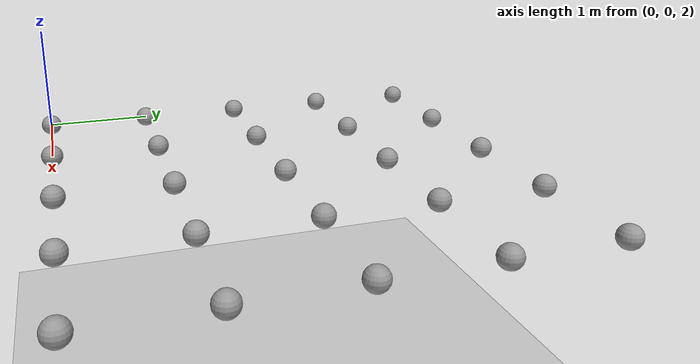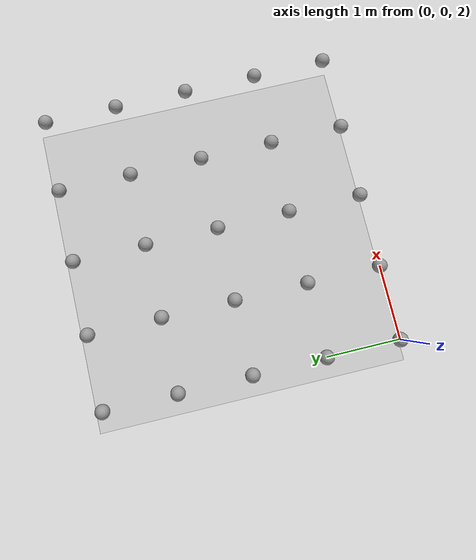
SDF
<sdf version="1.5">
 <world name="default">
  <model name="ground_plane">
   <static>true</static>
   <link name="link">
    <collision name="collision">
     <geometry><plane><normal>0 0 1</normal><size>100 100</size></plane></geometry>
     <surface>
      <bounce><restitution_coefficient>1.0</restitution_coefficient><threshold>0</threshold></bounce>
      <contact><ode><kd>1</kd><kp>1e8</kp><max_vel>1e5</max_vel><min_depth>0.001</min_depth></ode></contact>
      <friction><ode><mu>100</mu><mu2>50</mu2></ode></friction>
     </surface>
    </collision>
    <visual name="visual">
     <cast_shadows>false</cast_shadows>
     <geometry><plane><normal>0 0 1</normal><size>100 100</size></plane></geometry>
     <material>
      <script><uri>file://media/materials/scripts/gazebo.material</uri><name>Gazebo/Grey</name></script>
     </material>
    </visual>
   </link>
  </model>
  <include><uri>model://sun</uri></include>
  <model name="ball_2.0_0">
   <pose>0 0 2.0  0 0 0</pose>
   <link name="link">
    <inertial>
     <mass>11.309733552923257</mass>
     <inertia>
      <ixx>0.04523893421169304</ixx>
      <iyy>0.04523893421169304</iyy>
      <izz>0.04523893421169304</izz>
      <ixy>0.0</ixy>
      <ixz>0.0</ixz>
      <iyz>0.0</iyz>
     </inertia>
    </inertial>
    <collision name="collision">
     <geometry><sphere><radius>0.1</radius></sphere></geometry>
     <surface>
      <bounce><restitution_coefficient>1.0</restitution_coefficient><threshold>0</threshold></bounce>
      <contact><ode><kd>1</kd><kp>1e8</kp><max_vel>1e5</max_vel><min_depth>0.001</min_depth></ode></contact>
     </surface>
    </collision>
    <visual name="visual">
     <geometry><sphere><radius>0.1</radius></sphere></geometry>
     <material>
      <script><uri>file://media/materials/scripts/gazebo.material</uri><name>Gazebo/Grey</name></script>
     </material>
    </visual>
   </link>
  </model>
  <model name="ball_2.0_1">
   <pose>0 1 2.0  0 0 0</pose>
   <link name="link">
    <inertial>
     <mass>11.309733552923257</mass>
     <inertia>
      <ixx>0.04523893421169304</ixx>
      <iyy>0.04523893421169304</iyy>
      <izz>0.04523893421169304</izz>
      <ixy>0.0</ixy>
      <ixz>0.0</ixz>
      <iyz>0.0</iyz>
     </inertia>
    </inertial>
    <collision name="collision">
     <geometry><sphere><radius>0.1</radius></sphere></geometry>
     <surface>
      <bounce><restitution_coefficient>1.0</restitution_coefficient><threshold>0</threshold></bounce>
      <contact><ode><kd>1</kd><kp>1e8</kp><max_vel>1e5</max_vel><min_depth>0.001</min_depth></ode></contact>
     </surface>
    </collision>
    <visual name="visual">
     <geometry><sphere><radius>0.1</radius></sphere></geometry>
     <material>
      <script><uri>file://media/materials/scripts/gazebo.material</uri><name>Gazebo/Grey</name></script>
     </material>
    </visual>
   </link>
  </model>
  <model name="ball_2.0_2">
   <pose>0 2 2.0  0 0 0</pose>
   <link name="link">
    <inertial>
     <mass>11.309733552923257</mass>
     <inertia>
      <ixx>0.04523893421169304</ixx>
      <iyy>0.04523893421169304</iyy>
      <izz>0.04523893421169304</izz>
      <ixy>0.0</ixy>
      <ixz>0.0</ixz>
      <iyz>0.0</iyz>
     </inertia>
    </inertial>
    <collision name="collision">
     <geometry><sphere><radius>0.1</radius></sphere></geometry>
     <surface>
      <bounce><restitution_coefficient>1.0</restitution_coefficient><threshold>0</threshold></bounce>
      <contact><ode><kd>1</kd><kp>1e8</kp><max_vel>1e5</max_vel><min_depth>0.001</min_depth></ode></contact>
     </surface>
    </collision>
    <visual name="visual">
     <geometry><sphere><radius>0.1</radius></sphere></geometry>
     <material>
      <script><uri>file://media/materials/scripts/gazebo.material</uri><name>Gazebo/Grey</name></script>
     </material>
    </visual>
   </link>
  </model>
  <model name="ball_2.0_3">
   <pose>0 3 2.0  0 0 0</pose>
   <link name="link">
    <inertial>
     <mass>11.309733552923257</mass>
     <inertia>
      <ixx>0.04523893421169304</ixx>
      <iyy>0.04523893421169304</iyy>
      <izz>0.04523893421169304</izz>
      <ixy>0.0</ixy>
      <ixz>0.0</ixz>
      <iyz>0.0</iyz>
     </inertia>
    </inertial>
    <collision name="collision">
     <geometry><sphere><radius>0.1</radius></sphere></geometry>
     <surface>
      <bounce><restitution_coefficient>1.0</restitution_coefficient><threshold>0</threshold></bounce>
      <contact><ode><kd>1</kd><kp>1e8</kp><max_vel>1e5</max_vel><min_depth>0.001</min_depth></ode></contact>
     </surface>
    </collision>
    <visual name="visual">
     <geometry><sphere><radius>0.1</radius></sphere></geometry>
     <material>
      <script><uri>file://media/materials/scripts/gazebo.material</uri><name>Gazebo/Grey</name></script>
     </material>
    </visual>
   </link>
  </model>
  <model name="ball_2.0_4">
   <pose>0 4 2.0  0 0 0</pose>
   <link name="link">
    <inertial>
     <mass>11.309733552923257</mass>
     <inertia>
      <ixx>0.04523893421169304</ixx>
      <iyy>0.04523893421169304</iyy>
      <izz>0.04523893421169304</izz>
      <ixy>0.0</ixy>
      <ixz>0.0</ixz>
      <iyz>0.0</iyz>
     </inertia>
    </inertial>
    <collision name="collision">
     <geometry><sphere><radius>0.1</radius></sphere></geometry>
     <surface>
      <bounce><restitution_coefficient>1.0</restitution_coefficient><threshold>0</threshold></bounce>
      <contact><ode><kd>1</kd><kp>1e8</kp><max_vel>1e5</max_vel><min_depth>0.001</min_depth></ode></contact>
     </surface>
    </collision>
    <visual name="visual">
     <geometry><sphere><radius>0.1</radius></sphere></geometry>
     <material>
      <script><uri>file://media/materials/scripts/gazebo.material</uri><name>Gazebo/Grey</name></script>
     </material>
    </visual>
   </link>
  </model>
  <model name="ball_2.001_0">
   <pose>1 0 2.001  0 0 0</pose>
   <link name="link">
    <inertial>
     <mass>11.309733552923257</mass>
     <inertia>
      <ixx>0.04523893421169304</ixx>
      <iyy>0.04523893421169304</iyy>
      <izz>0.04523893421169304</izz>
      <ixy>0.0</ixy>
      <ixz>0.0</ixz>
      <iyz>0.0</iyz>
     </inertia>
    </inertial>
    <collision name="collision">
     <geometry><sphere><radius>0.1</radius></sphere></geometry>
     <surface>
      <bounce><restitution_coefficient>1.0</restitution_coefficient><threshold>0</threshold></bounce>
      <contact><ode><kd>1</kd><kp>1e8</kp><max_vel>1e5</max_vel><min_depth>0.001</min_depth></ode></contact>
     </surface>
    </collision>
    <visual name="visual">
     <geometry><sphere><radius>0.1</radius></sphere></geometry>
     <material>
      <script><uri>file://media/materials/scripts/gazebo.material</uri><name>Gazebo/Grey</name></script>
     </material>
    </visual>
   </link>
  </model>
  <model name="ball_2.001_1">
   <pose>1 1 2.001  0 0 0</pose>
   <link name="link">
    <inertial>
     <mass>11.309733552923257</mass>
     <inertia>
      <ixx>0.04523893421169304</ixx>
      <iyy>0.04523893421169304</iyy>
      <izz>0.04523893421169304</izz>
      <ixy>0.0</ixy>
      <ixz>0.0</ixz>
      <iyz>0.0</iyz>
     </inertia>
    </inertial>
    <collision name="collision">
     <geometry><sphere><radius>0.1</radius></sphere></geometry>
     <surface>
      <bounce><restitution_coefficient>1.0</restitution_coefficient><threshold>0</threshold></bounce>
      <contact><ode><kd>1</kd><kp>1e8</kp><max_vel>1e5</max_vel><min_depth>0.001</min_depth></ode></contact>
     </surface>
    </collision>
    <visual name="visual">
     <geometry><sphere><radius>0.1</radius></sphere></geometry>
     <material>
      <script><uri>file://media/materials/scripts/gazebo.material</uri><name>Gazebo/Grey</name></script>
     </material>
    </visual>
   </link>
  </model>
  <model name="ball_2.001_2">
   <pose>1 2 2.001  0 0 0</pose>
   <link name="link">
    <inertial>
     <mass>11.309733552923257</mass>
     <inertia>
      <ixx>0.04523893421169304</ixx>
      <iyy>0.04523893421169304</iyy>
      <izz>0.04523893421169304</izz>
      <ixy>0.0</ixy>
      <ixz>0.0</ixz>
      <iyz>0.0</iyz>
     </inertia>
    </inertial>
    <collision name="collision">
     <geometry><sphere><radius>0.1</radius></sphere></geometry>
     <surface>
      <bounce><restitution_coefficient>1.0</restitution_coefficient><threshold>0</threshold></bounce>
      <contact><ode><kd>1</kd><kp>1e8</kp><max_vel>1e5</max_vel><min_depth>0.001</min_depth></ode></contact>
     </surface>
    </collision>
    <visual name="visual">
     <geometry><sphere><radius>0.1</radius></sphere></geometry>
     <material>
      <script><uri>file://media/materials/scripts/gazebo.material</uri><name>Gazebo/Grey</name></script>
     </material>
    </visual>
   </link>
  </model>
  <model name="ball_2.001_3">
   <pose>1 3 2.001  0 0 0</pose>
   <link name="link">
    <inertial>
     <mass>11.309733552923257</mass>
     <inertia>
      <ixx>0.04523893421169304</ixx>
      <iyy>0.04523893421169304</iyy>
      <izz>0.04523893421169304</izz>
      <ixy>0.0</ixy>
      <ixz>0.0</ixz>
      <iyz>0.0</iyz>
     </inertia>
    </inertial>
    <collision name="collision">
     <geometry><sphere><radius>0.1</radius></sphere></geometry>
     <surface>
      <bounce><restitution_coefficient>1.0</restitution_coefficient><threshold>0</threshold></bounce>
      <contact><ode><kd>1</kd><kp>1e8</kp><max_vel>1e5</max_vel><min_depth>0.001</min_depth></ode></contact>
     </surface>
    </collision>
    <visual name="visual">
     <geometry><sphere><radius>0.1</radius></sphere></geometry>
     <material>
      <script><uri>file://media/materials/scripts/gazebo.material</uri><name>Gazebo/Grey</name></script>
     </material>
    </visual>
   </link>
  </model>
  <model name="ball_2.001_4">
   <pose>1 4 2.001  0 0 0</pose>
   <link name="link">
    <inertial>
     <mass>11.309733552923257</mass>
     <inertia>
      <ixx>0.04523893421169304</ixx>
      <iyy>0.04523893421169304</iyy>
      <izz>0.04523893421169304</izz>
      <ixy>0.0</ixy>
      <ixz>0.0</ixz>
      <iyz>0.0</iyz>
     </inertia>
    </inertial>
    <collision name="collision">
     <geometry><sphere><radius>0.1</radius></sphere></geometry>
     <surface>
      <bounce><restitution_coefficient>1.0</restitution_coefficient><threshold>0</threshold></bounce>
      <contact><ode><kd>1</kd><kp>1e8</kp><max_vel>1e5</max_vel><min_depth>0.001</min_depth></ode></contact>
     </surface>
    </collision>
    <visual name="visual">
     <geometry><sphere><radius>0.1</radius></sphere></geometry>
     <material>
      <script><uri>file://media/materials/scripts/gazebo.material</uri><name>Gazebo/Grey</name></script>
     </material>
    </visual>
   </link>
  </model>
  <model name="ball_2.002_0">
   <pose>2 0 2.002  0 0 0</pose>
   <link name="link">
    <inertial>
     <mass>11.309733552923257</mass>
     <inertia>
      <ixx>0.04523893421169304</ixx>
      <iyy>0.04523893421169304</iyy>
      <izz>0.04523893421169304</izz>
      <ixy>0.0</ixy>
      <ixz>0.0</ixz>
      <iyz>0.0</iyz>
     </inertia>
    </inertial>
    <collision name="collision">
     <geometry><sphere><radius>0.1</radius></sphere></geometry>
     <surface>
      <bounce><restitution_coefficient>1.0</restitution_coefficient><threshold>0</threshold></bounce>
      <contact><ode><kd>1</kd><kp>1e8</kp><max_vel>1e5</max_vel><min_depth>0.001</min_depth></ode></contact>
     </surface>
    </collision>
    <visual name="visual">
     <geometry><sphere><radius>0.1</radius></sphere></geometry>
     <material>
      <script><uri>file://media/materials/scripts/gazebo.material</uri><name>Gazebo/Grey</name></script>
     </material>
    </visual>
   </link>
  </model>
  <model name="ball_2.002_1">
   <pose>2 1 2.002  0 0 0</pose>
   <link name="link">
    <inertial>
     <mass>11.309733552923257</mass>
     <inertia>
      <ixx>0.04523893421169304</ixx>
      <iyy>0.04523893421169304</iyy>
      <izz>0.04523893421169304</izz>
      <ixy>0.0</ixy>
      <ixz>0.0</ixz>
      <iyz>0.0</iyz>
     </inertia>
    </inertial>
    <collision name="collision">
     <geometry><sphere><radius>0.1</radius></sphere></geometry>
     <surface>
      <bounce><restitution_coefficient>1.0</restitution_coefficient><threshold>0</threshold></bounce>
      <contact><ode><kd>1</kd><kp>1e8</kp><max_vel>1e5</max_vel><min_depth>0.001</min_depth></ode></contact>
     </surface>
    </collision>
    <visual name="visual">
     <geometry><sphere><radius>0.1</radius></sphere></geometry>
     <material>
      <script><uri>file://media/materials/scripts/gazebo.material</uri><name>Gazebo/Grey</name></script>
     </material>
    </visual>
   </link>
  </model>
  <model name="ball_2.002_2">
   <pose>2 2 2.002  0 0 0</pose>
   <link name="link">
    <inertial>
     <mass>11.309733552923257</mass>
     <inertia>
      <ixx>0.04523893421169304</ixx>
      <iyy>0.04523893421169304</iyy>
      <izz>0.04523893421169304</izz>
      <ixy>0.0</ixy>
      <ixz>0.0</ixz>
      <iyz>0.0</iyz>
     </inertia>
    </inertial>
    <collision name="collision">
     <geometry><sphere><radius>0.1</radius></sphere></geometry>
     <surface>
      <bounce><restitution_coefficient>1.0</restitution_coefficient><threshold>0</threshold></bounce>
      <contact><ode><kd>1</kd><kp>1e8</kp><max_vel>1e5</max_vel><min_depth>0.001</min_depth></ode></contact>
     </surface>
    </collision>
    <visual name="visual">
     <geometry><sphere><radius>0.1</radius></sphere></geometry>
     <material>
      <script><uri>file://media/materials/scripts/gazebo.material</uri><name>Gazebo/Grey</name></script>
     </material>
    </visual>
   </link>
  </model>
  <model name="ball_2.002_3">
   <pose>2 3 2.002  0 0 0</pose>
   <link name="link">
    <inertial>
     <mass>11.309733552923257</mass>
     <inertia>
      <ixx>0.04523893421169304</ixx>
      <iyy>0.04523893421169304</iyy>
      <izz>0.04523893421169304</izz>
      <ixy>0.0</ixy>
      <ixz>0.0</ixz>
      <iyz>0.0</iyz>
     </inertia>
    </inertial>
    <collision name="collision">
     <geometry><sphere><radius>0.1</radius></sphere></geometry>
     <surface>
      <bounce><restitution_coefficient>1.0</restitution_coefficient><threshold>0</threshold></bounce>
      <contact><ode><kd>1</kd><kp>1e8</kp><max_vel>1e5</max_vel><min_depth>0.001</min_depth></ode></contact>
     </surface>
    </collision>
    <visual name="visual">
     <geometry><sphere><radius>0.1</radius></sphere></geometry>
     <material>
      <script><uri>file://media/materials/scripts/gazebo.material</uri><name>Gazebo/Grey</name></script>
     </material>
    </visual>
   </link>
  </model>
  <model name="ball_2.002_4">
   <pose>2 4 2.002  0 0 0</pose>
   <link name="link">
    <inertial>
     <mass>11.309733552923257</mass>
     <inertia>
      <ixx>0.04523893421169304</ixx>
      <iyy>0.04523893421169304</iyy>
      <izz>0.04523893421169304</izz>
      <ixy>0.0</ixy>
      <ixz>0.0</ixz>
      <iyz>0.0</iyz>
     </inertia>
    </inertial>
    <collision name="collision">
     <geometry><sphere><radius>0.1</radius></sphere></geometry>
     <surface>
      <bounce><restitution_coefficient>1.0</restitution_coefficient><threshold>0</threshold></bounce>
      <contact><ode><kd>1</kd><kp>1e8</kp><max_vel>1e5</max_vel><min_depth>0.001</min_depth></ode></contact>
     </surface>
    </collision>
    <visual name="visual">
     <geometry><sphere><radius>0.1</radius></sphere></geometry>
     <material>
      <script><uri>file://media/materials/scripts/gazebo.material</uri><name>Gazebo/Grey</name></script>
     </material>
    </visual>
   </link>
  </model>
  <model name="ball_2.003_0">
   <pose>3 0 2.003  0 0 0</pose>
   <link name="link">
    <inertial>
     <mass>11.309733552923257</mass>
     <inertia>
      <ixx>0.04523893421169304</ixx>
      <iyy>0.04523893421169304</iyy>
      <izz>0.04523893421169304</izz>
      <ixy>0.0</ixy>
      <ixz>0.0</ixz>
      <iyz>0.0</iyz>
     </inertia>
    </inertial>
    <collision name="collision">
     <geometry><sphere><radius>0.1</radius></sphere></geometry>
     <surface>
      <bounce><restitution_coefficient>1.0</restitution_coefficient><threshold>0</threshold></bounce>
      <contact><ode><kd>1</kd><kp>1e8</kp><max_vel>1e5</max_vel><min_depth>0.001</min_depth></ode></contact>
     </surface>
    </collision>
    <visual name="visual">
     <geometry><sphere><radius>0.1</radius></sphere></geometry>
     <material>
      <script><uri>file://media/materials/scripts/gazebo.material</uri><name>Gazebo/Grey</name></script>
     </material>
    </visual>
   </link>
  </model>
  <model name="ball_2.003_1">
   <pose>3 1 2.003  0 0 0</pose>
   <link name="link">
    <inertial>
     <mass>11.309733552923257</mass>
     <inertia>
      <ixx>0.04523893421169304</ixx>
      <iyy>0.04523893421169304</iyy>
      <izz>0.04523893421169304</izz>
      <ixy>0.0</ixy>
      <ixz>0.0</ixz>
      <iyz>0.0</iyz>
     </inertia>
    </inertial>
    <collision name="collision">
     <geometry><sphere><radius>0.1</radius></sphere></geometry>
     <surface>
      <bounce><restitution_coefficient>1.0</restitution_coefficient><threshold>0</threshold></bounce>
      <contact><ode><kd>1</kd><kp>1e8</kp><max_vel>1e5</max_vel><min_depth>0.001</min_depth></ode></contact>
     </surface>
    </collision>
    <visual name="visual">
     <geometry><sphere><radius>0.1</radius></sphere></geometry>
     <material>
      <script><uri>file://media/materials/scripts/gazebo.material</uri><name>Gazebo/Grey</name></script>
     </material>
    </visual>
   </link>
  </model>
  <model name="ball_2.003_2">
   <pose>3 2 2.003  0 0 0</pose>
   <link name="link">
    <inertial>
     <mass>11.309733552923257</mass>
     <inertia>
      <ixx>0.04523893421169304</ixx>
      <iyy>0.04523893421169304</iyy>
      <izz>0.04523893421169304</izz>
      <ixy>0.0</ixy>
      <ixz>0.0</ixz>
      <iyz>0.0</iyz>
     </inertia>
    </inertial>
    <collision name="collision">
     <geometry><sphere><radius>0.1</radius></sphere></geometry>
     <surface>
      <bounce><restitution_coefficient>1.0</restitution_coefficient><threshold>0</threshold></bounce>
      <contact><ode><kd>1</kd><kp>1e8</kp><max_vel>1e5</max_vel><min_depth>0.001</min_depth></ode></contact>
     </surface>
    </collision>
    <visual name="visual">
     <geometry><sphere><radius>0.1</radius></sphere></geometry>
     <material>
      <script><uri>file://media/materials/scripts/gazebo.material</uri><name>Gazebo/Grey</name></script>
     </material>
    </visual>
   </link>
  </model>
  <model name="ball_2.003_3">
   <pose>3 3 2.003  0 0 0</pose>
   <link name="link">
    <inertial>
     <mass>11.309733552923257</mass>
     <inertia>
      <ixx>0.04523893421169304</ixx>
      <iyy>0.04523893421169304</iyy>
      <izz>0.04523893421169304</izz>
      <ixy>0.0</ixy>
      <ixz>0.0</ixz>
      <iyz>0.0</iyz>
     </inertia>
    </inertial>
    <collision name="collision">
     <geometry><sphere><radius>0.1</radius></sphere></geometry>
     <surface>
      <bounce><restitution_coefficient>1.0</restitution_coefficient><threshold>0</threshold></bounce>
      <contact><ode><kd>1</kd><kp>1e8</kp><max_vel>1e5</max_vel><min_depth>0.001</min_depth></ode></contact>
     </surface>
    </collision>
    <visual name="visual">
     <geometry><sphere><radius>0.1</radius></sphere></geometry>
     <material>
      <script><uri>file://media/materials/scripts/gazebo.material</uri><name>Gazebo/Grey</name></script>
     </material>
    </visual>
   </link>
  </model>
  <model name="ball_2.003_4">
   <pose>3 4 2.003  0 0 0</pose>
   <link name="link">
    <inertial>
     <mass>11.309733552923257</mass>
     <inertia>
      <ixx>0.04523893421169304</ixx>
      <iyy>0.04523893421169304</iyy>
      <izz>0.04523893421169304</izz>
      <ixy>0.0</ixy>
      <ixz>0.0</ixz>
      <iyz>0.0</iyz>
     </inertia>
    </inertial>
    <collision name="collision">
     <geometry><sphere><radius>0.1</radius></sphere></geometry>
     <surface>
      <bounce><restitution_coefficient>1.0</restitution_coefficient><threshold>0</threshold></bounce>
      <contact><ode><kd>1</kd><kp>1e8</kp><max_vel>1e5</max_vel><min_depth>0.001</min_depth></ode></contact>
     </surface>
    </collision>
    <visual name="visual">
     <geometry><sphere><radius>0.1</radius></sphere></geometry>
     <material>
      <script><uri>file://media/materials/scripts/gazebo.material</uri><name>Gazebo/Grey</name></script>
     </material>
    </visual>
   </link>
  </model>
  <model name="ball_2.004_0">
   <pose>4 0 2.004  0 0 0</pose>
   <link name="link">
    <inertial>
     <mass>11.309733552923257</mass>
     <inertia>
      <ixx>0.04523893421169304</ixx>
      <iyy>0.04523893421169304</iyy>
      <izz>0.04523893421169304</izz>
      <ixy>0.0</ixy>
      <ixz>0.0</ixz>
      <iyz>0.0</iyz>
     </inertia>
    </inertial>
    <collision name="collision">
     <geometry><sphere><radius>0.1</radius></sphere></geometry>
     <surface>
      <bounce><restitution_coefficient>1.0</restitution_coefficient><threshold>0</threshold></bounce>
      <contact><ode><kd>1</kd><kp>1e8</kp><max_vel>1e5</max_vel><min_depth>0.001</min_depth></ode></contact>
     </surface>
    </collision>
    <visual name="visual">
     <geometry><sphere><radius>0.1</radius></sphere></geometry>
     <material>
      <script><uri>file://media/materials/scripts/gazebo.material</uri><name>Gazebo/Grey</name></script>
     </material>
    </visual>
   </link>
  </model>
  <model name="ball_2.004_1">
   <pose>4 1 2.004  0 0 0</pose>
   <link name="link">
    <inertial>
     <mass>11.309733552923257</mass>
     <inertia>
      <ixx>0.04523893421169304</ixx>
      <iyy>0.04523893421169304</iyy>
      <izz>0.04523893421169304</izz>
      <ixy>0.0</ixy>
      <ixz>0.0</ixz>
      <iyz>0.0</iyz>
     </inertia>
    </inertial>
    <collision name="collision">
     <geometry><sphere><radius>0.1</radius></sphere></geometry>
     <surface>
      <bounce><restitution_coefficient>1.0</restitution_coefficient><threshold>0</threshold></bounce>
      <contact><ode><kd>1</kd><kp>1e8</kp><max_vel>1e5</max_vel><min_depth>0.001</min_depth></ode></contact>
     </surface>
    </collision>
    <visual name="visual">
     <geometry><sphere><radius>0.1</radius></sphere></geometry>
     <material>
      <script><uri>file://media/materials/scripts/gazebo.material</uri><name>Gazebo/Grey</name></script>
     </material>
    </visual>
   </link>
  </model>
  <model name="ball_2.004_2">
   <pose>4 2 2.004  0 0 0</pose>
   <link name="link">
    <inertial>
     <mass>11.309733552923257</mass>
     <inertia>
      <ixx>0.04523893421169304</ixx>
      <iyy>0.04523893421169304</iyy>
      <izz>0.04523893421169304</izz>
      <ixy>0.0</ixy>
      <ixz>0.0</ixz>
      <iyz>0.0</iyz>
     </inertia>
    </inertial>
    <collision name="collision">
     <geometry><sphere><radius>0.1</radius></sphere></geometry>
     <surface>
      <bounce><restitution_coefficient>1.0</restitution_coefficient><threshold>0</threshold></bounce>
      <contact><ode><kd>1</kd><kp>1e8</kp><max_vel>1e5</max_vel><min_depth>0.001</min_depth></ode></contact>
     </surface>
    </collision>
    <visual name="visual">
     <geometry><sphere><radius>0.1</radius></sphere></geometry>
     <material>
      <script><uri>file://media/materials/scripts/gazebo.material</uri><name>Gazebo/Grey</name></script>
     </material>
    </visual>
   </link>
  </model>
  <model name="ball_2.004_3">
   <pose>4 3 2.004  0 0 0</pose>
   <link name="link">
    <inertial>
     <mass>11.309733552923257</mass>
     <inertia>
      <ixx>0.04523893421169304</ixx>
      <iyy>0.04523893421169304</iyy>
      <izz>0.04523893421169304</izz>
      <ixy>0.0</ixy>
      <ixz>0.0</ixz>
      <iyz>0.0</iyz>
     </inertia>
    </inertial>
    <collision name="collision">
     <geometry><sphere><radius>0.1</radius></sphere></geometry>
     <surface>
      <bounce><restitution_coefficient>1.0</restitution_coefficient><threshold>0</threshold></bounce>
      <contact><ode><kd>1</kd><kp>1e8</kp><max_vel>1e5</max_vel><min_depth>0.001</min_depth></ode></contact>
     </surface>
    </collision>
    <visual name="visual">
     <geometry><sphere><radius>0.1</radius></sphere></geometry>
     <material>
      <script><uri>file://media/materials/scripts/gazebo.material</uri><name>Gazebo/Grey</name></script>
     </material>
    </visual>
   </link>
  </model>
  <model name="ball_2.004_4">
   <pose>4 4 2.004  0 0 0</pose>
   <link name="link">
    <inertial>
     <mass>11.309733552923257</mass>
     <inertia>
      <ixx>0.04523893421169304</ixx>
      <iyy>0.04523893421169304</iyy>
      <izz>0.04523893421169304</izz>
      <ixy>0.0</ixy>
      <ixz>0.0</ixz>
      <iyz>0.0</iyz>
     </inertia>
    </inertial>
    <collision name="collision">
     <geometry><sphere><radius>0.1</radius></sphere></geometry>
     <surface>
      <bounce><restitution_coefficient>1.0</restitution_coefficient><threshold>0</threshold></bounce>
      <contact><ode><kd>1</kd><kp>1e8</kp><max_vel>1e5</max_vel><min_depth>0.001</min_depth></ode></contact>
     </surface>
    </collision>
    <visual name="visual">
     <geometry><sphere><radius>0.1</radius></sphere></geometry>
     <material>
      <script><uri>file://media/materials/scripts/gazebo.material</uri><name>Gazebo/Grey</name></script>
     </material>
    </visual>
   </link>
  </model>
 </world>
</sdf>
